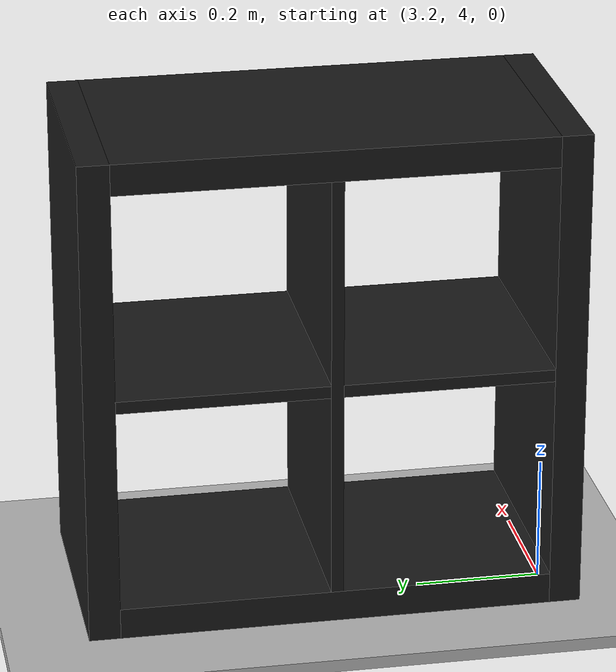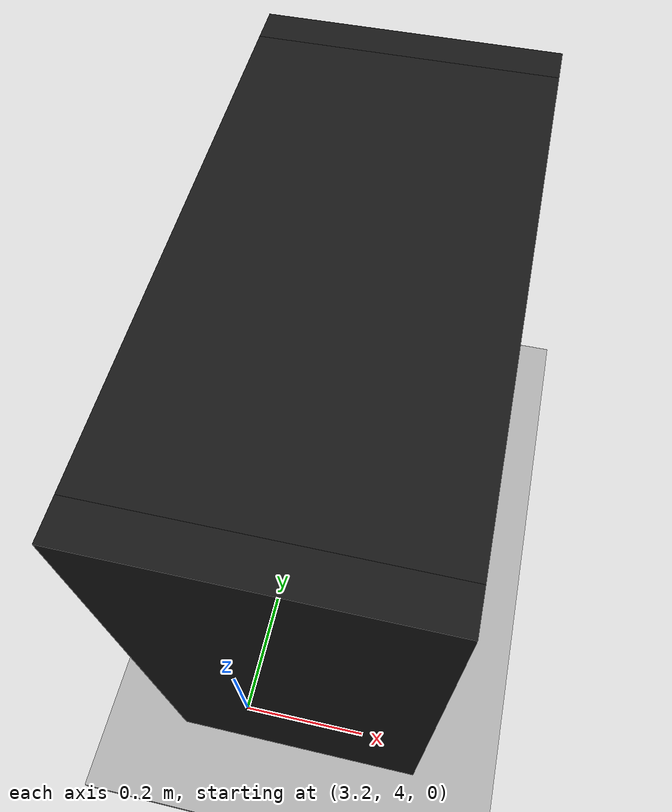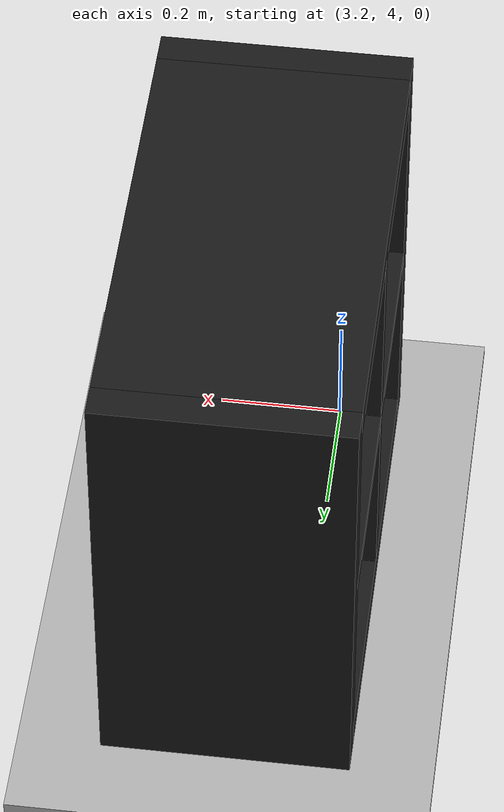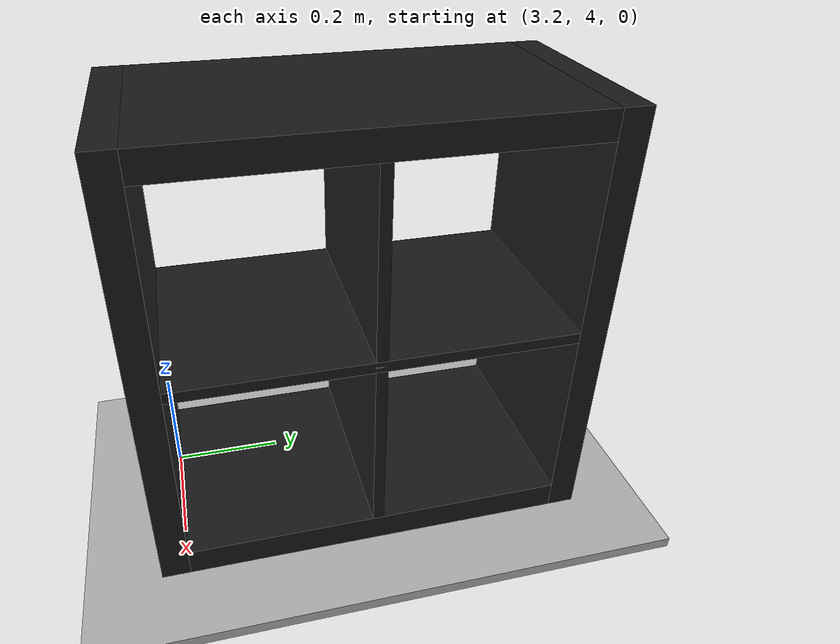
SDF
<sdf version="1.6">
 <world name="robot-lab">
  <include><name>cabinet</name><uri>model://cabinet</uri><pose>3.3 4.35 0 0 0 0</pose></include>
  <model name="floor">
   <link name="1_link">
    <collision name="1_col"><geometry><box><size>200 200 0.02</size></box></geometry></collision>
    <visual name="1_vis"><geometry><box><size>200 200 0.02</size></box></geometry></visual>
    <pose>0 0 -0.01 0 0 0</pose>
   </link>
   <static>true</static>
  </model>
  <light type="directional" name="sun">
   <pose>0 0 10 0 0 0</pose>
   <diffuse>0.8 0.8 0.8 1</diffuse>
   <specular>0.2 0.2 0.2 1</specular>
   <direction>0.5 0.1 -0.9</direction>
   <attenuation>
    <range>1000</range>
    <constant>0.9</constant>
    <linear>0.01</linear>
    <quadratic>0.001</quadratic>
   </attenuation>
  </light>
  <physics type="ode">
   <real_time_update_rate>333.0</real_time_update_rate>
   <max_step_size>0.003</max_step_size>
   <ode><solver type="quick"><iters>100</iters></solver><constraints><cfm>0.0001</cfm></constraints></ode>
  </physics>
 </world>
</sdf>

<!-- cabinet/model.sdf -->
<sdf version="1.6">
  <model name="cabinet">
    <static>true</static>
    <link name="1_link">
      <collision name="1_col">
        <geometry>
          <box>
            <size>0.395 0.05 0.79</size>
          </box>
        </geometry>
      </collision>
      <visual name="1_vis">
        <geometry>
          <box>
            <size>0.395 0.05 0.79</size>
          </box>
        </geometry>
        <material>
          <ambient>0.1 0.1 0.1 1</ambient>
        </material>
      </visual>
      <pose>0 -0.37 0.395 0 0 0</pose>
    </link>
    <link name="2_link">
      <collision name="2_col">
        <geometry>
          <box>
            <size>0.395 0.05 0.79</size>
          </box>
        </geometry>
      </collision>
      <visual name="2_vis">
        <geometry>
          <box>
            <size>0.395 0.05 0.79</size>
          </box>
        </geometry>
        <material>
          <ambient>0.1 0.1 0.1 1</ambient>
        </material>
      </visual>
      <pose>0 0.37 0.395 0 0 0</pose>
    </link>
    <link name="3_link">
      <collision name="3_col">
        <geometry>
          <box>
            <size>0.395 0.69 0.05</size>
          </box>
        </geometry>
      </collision>
      <visual name="3_vis">
        <geometry>
          <box>
            <size>0.395 0.69 0.05</size>
          </box>
        </geometry>
        <material>
          <ambient>0.1 0.1 0.1 1</ambient>
        </material>
      </visual>
      <pose>0 0 0.765 0 0 0</pose>
    </link>
    <link name="4_link">
      <collision name="4_col">
        <geometry>
          <box>
            <size>0.395 0.69 0.05</size>
          </box>
        </geometry>
      </collision>
      <visual name="4_vis">
        <geometry>
          <box>
            <size>0.395 0.69 0.05</size>
          </box>
        </geometry>
        <material>
          <ambient>0.1 0.1 0.1 1</ambient>
        </material>
      </visual>
      <pose>0 0 0.025 0 0 0</pose>
    </link>
    <link name="5_link">
      <collision name="5_col">
        <geometry>
          <box>
            <size>0.395 0.69 0.02</size>
          </box>
        </geometry>
      </collision>
      <visual name="5_vis">
        <geometry>
          <box>
            <size>0.395 0.69 0.02</size>
          </box>
        </geometry>
        <material>
          <ambient>0.1 0.1 0.1 1</ambient>
        </material>
      </visual>
      <pose>0 0 0.395 0 0 0</pose>
    </link>
    <link name="6_link">
      <collision name="6_col">
        <geometry>
          <box>
            <size>0.395 0.02 0.69</size>
          </box>
        </geometry>
      </collision>
      <visual name="6_vis">
        <geometry>
          <box>
            <size>0.395 0.02 0.69</size>
          </box>
        </geometry>
        <material>
          <ambient>0.1 0.1 0.1 1</ambient>
        </material>
      </visual>
      <pose>0 0 0.395 0 0 0</pose>
    </link>
    <link name="in_front_of">
      <virtual_volume name="in_front_of_vv">
        <geometry>
          <box>
            <size>0.7 0.79 0</size>
          </box>
        </geometry>
        <pose>-0.35 0.0 0.0 0 0 0</pose>
      </virtual_volume>
    </link>
    <link name="on_top_of">
      <virtual_volume name="on_top_of_vv">
        <geometry>
          <box>
            <size>0.34 0.74 0.355</size>
          </box>
        </geometry>
        <pose>0.0 0.0 1.0225 0 0 0</pose>
      </virtual_volume>
    </link>
  </model>
</sdf>
